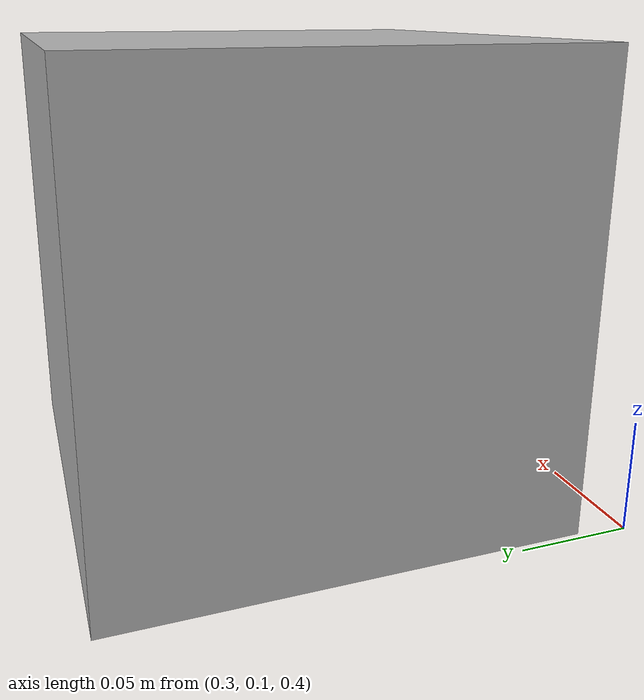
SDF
<?xml version="1.0"?>
<sdf version="1.6">
  <model name='box'>
    <pose>0.41110848594480309 0.22091487055839254 0.5 0 0 0</pose>
    <link name='box_link'>
      <inertial>
        <inertia>
          <ixx>0.16666</ixx>
          <ixy>0</ixy>
          <ixz>0</ixz>
          <iyy>0.16666</iyy>
          <iyz>0</iyz>
          <izz>0.16666</izz>
        </inertia>
        <mass>1</mass>
        <pose>0 0 0 0 0 0</pose>
      </inertial>
      <collision name='box_collision'>
        <geometry>
          <box>
            <size>0.207 0.207 0.207</size>
          </box>
        </geometry>
        <surface>
          <friction>
            <ode/>
          </friction>
          <bounce/>
          <contact/>
        </surface>
      </collision>
      <visual name='box_visual'>
        <geometry>
          <box>
            <size>0.207 0.207 0.207</size>
          </box>
        </geometry>
        <material>
          <ambient>0.300000012 0.300000012 0.300000012 1</ambient>
          <diffuse>0.699999988 0.699999988 0.699999988 1</diffuse>
          <specular>1 1 1 1</specular>
        </material>
      </visual>
      <pose>0 0 0 0 0 0</pose>
      <enable_wind>false</enable_wind>
    </link>
    <static>false</static>
    <self_collide>false</self_collide>
  </model>
</sdf>
